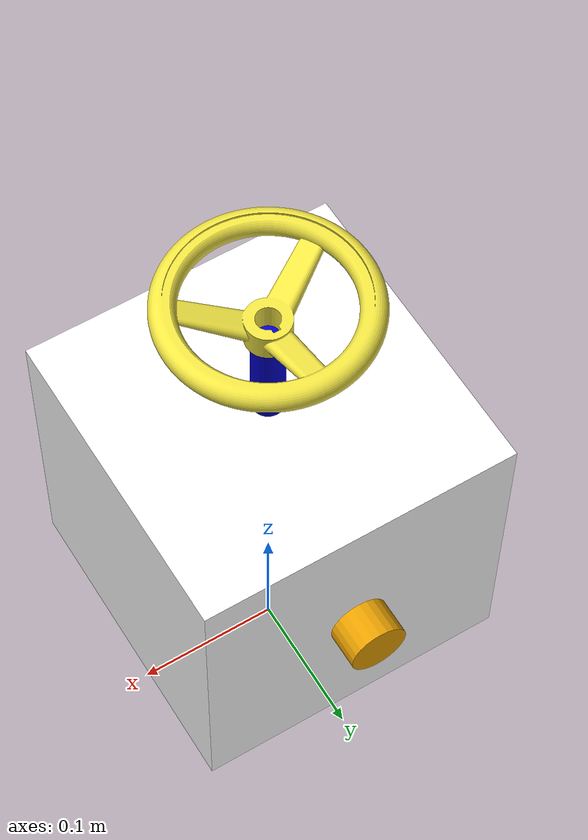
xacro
<?xml version="1.0"?>
<robot name="valve_description" xmlns:xacro="http://ros.org/wiki/xacro">

  <xacro:property name="side" value="0.22" />
  <xacro:property name="z_offset_box" value="${0.0615}" />
  <xacro:property name="spacer_radius" value="0.011" />
  <xacro:property name="spacer_height" value="0.072" />

  <material name="blue">
    <color rgba="0 0 0.8 1"/>
  </material>

  <material name="white">
    <color rgba="1 1 1 1"/>
  </material>

  <link name="base_link">
    <visual>
      <geometry>
        <cylinder radius="0.02" length="0.05"/>
      </geometry>
      <origin xyz="0 ${side/2} ${z_offset_box + side/2}" rpy="${pi/2} 0 0" />
    </visual>
    <origin xyz="0 0 0" rpy="${pi/2} 0 0" />
  </link>

  <link name="box">
    <visual>
      <geometry>
        <box size="${side} ${side} ${side}"/>
      </geometry>
      <inertial>
        <mass value="10"/>
        <inertia ixx="0.4" ixy="0.0" ixz="0.0" iyy="0.4" iyz="0.0" izz="0.2"/>
      </inertial>
      <material name="white"/>
    </visual>
  </link>

  <joint name="box_incline" type="revolute">
    <axis xyz="0 1 0"/>
    <limit effort="1000.0" lower="0.0" upper="${pi/2}" velocity="0.5"/>
    <parent link="base_link"/>
    <child link="box"/>
    <origin xyz="0 0 ${z_offset_box + side/2}" rpy="0 0 0" />
  </joint>

  <link name="spacer">
    <visual>
      <geometry>
        <cylinder radius="${spacer_radius}" length="${spacer_height}"/>
      </geometry>
      <material name="blue"/>
    </visual>
    <collision>
      <geometry>
        <cylinder radius="${spacer_radius}" length="${spacer_height}"/>
      </geometry>
    </collision>
    <inertial>
      <mass value="10"/>
      <inertia ixx="0.4" ixy="0.0" ixz="0.0" iyy="0.4" iyz="0.0" izz="0.2"/>
    </inertial>
  </link>

  <joint name="spacerbox" type="fixed">
    <parent link="box"/>
    <child link="spacer"/>
    <origin xyz="0 0 ${side/2 + spacer_height/2}"/>
  </joint>

  <link name="handwheel">
    <visual>
      <geometry>
        <mesh filename="package://valve_description/mesh/handwheel_245900116_stl.stl" scale="0.001 0.001 0.001"/>
      </geometry>
    </visual>
    <collision>
      <geometry>
        <mesh filename="package://valve_description/mesh/handwheel_245900116_stl.stl" scale="0.001 0.001 0.001"/>
      </geometry>
    </collision>
      <inertial>
      <mass value="10"/>
      <inertia ixx="0.4" ixy="0.0" ixz="0.0" iyy="0.4" iyz="0.0" izz="0.2"/>
    </inertial>
  </link>

  <joint name="wheel_rotation" type="revolute">
    <axis xyz="0 0 1"/>
    <limit effort="1000.0" lower="0.0" upper="${pi}" velocity="0.5"/>
    <parent link="spacer"/>
    <child link="handwheel"/>
    <origin xyz="0 0 ${spacer_height/2}"/>
  </joint>

</robot>
